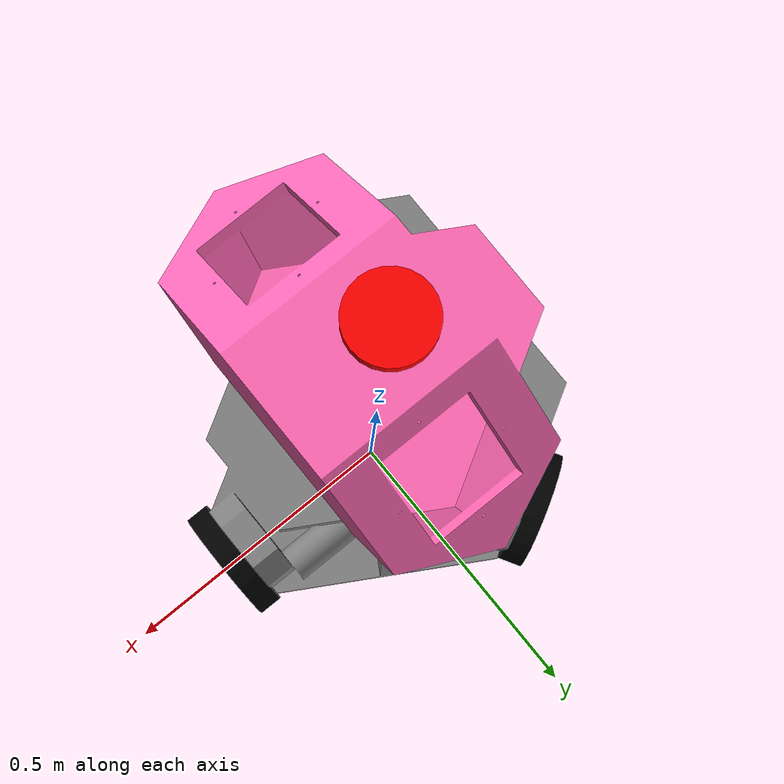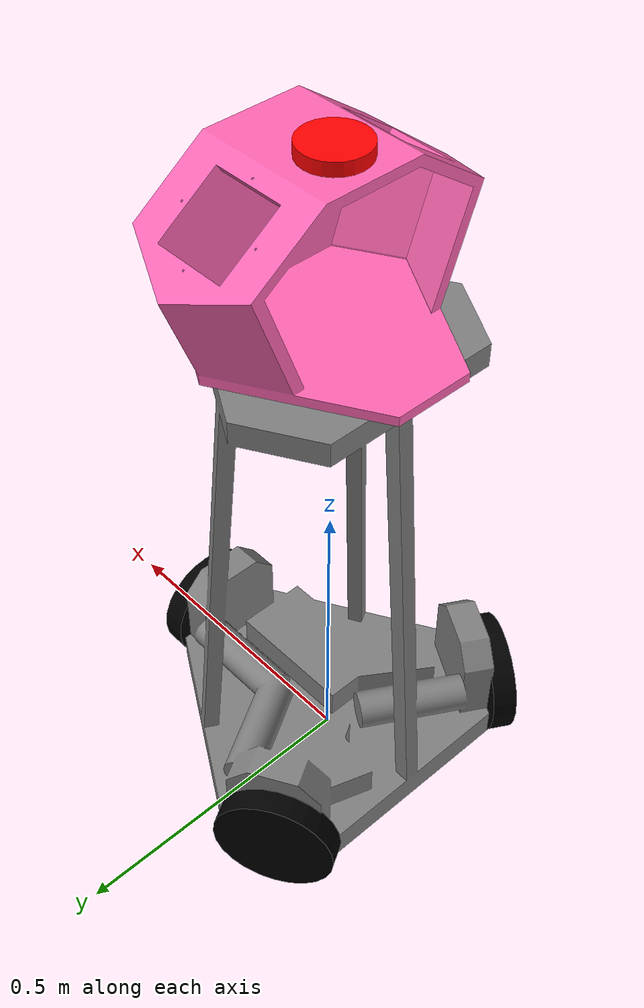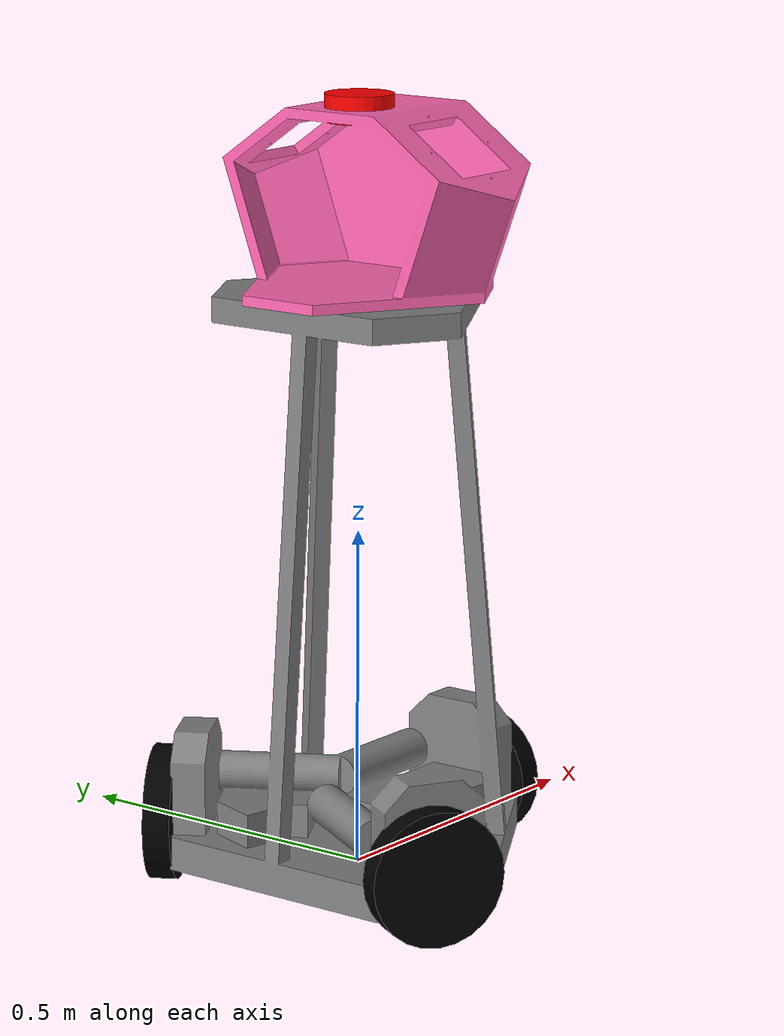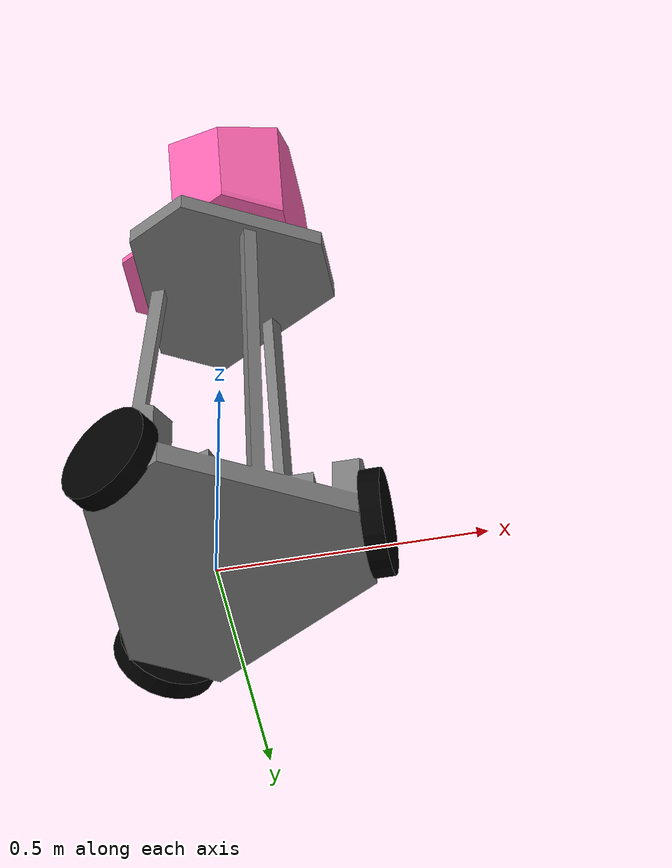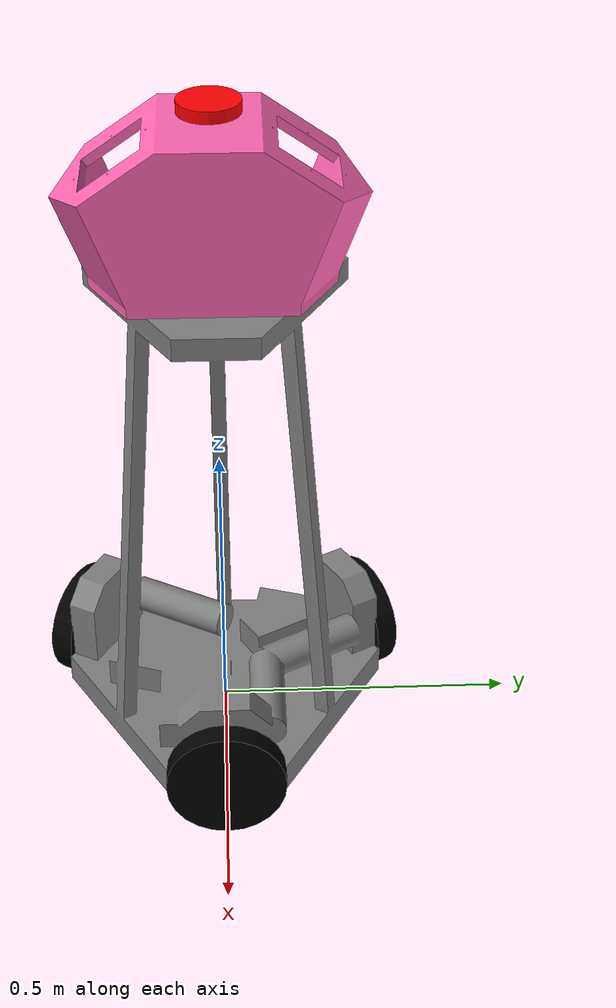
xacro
<?xml version ="1.0"?>
<robot name="my_robot" xmlns:xacro="http://www.ros.org/wiki/xacro">
    <xacro:property name = "wheel_radius" value = "0.1"/>
    <xacro:property name = "wheel_length" value = "0.04"/>
    <xacro:property name = "wheel_height" value = "0.064"/>

    <xacro:include filename="common_properties.xacro"/>

    <link name="base_footprint"/>

    <link name="base_robot">
        <visual>
            <origin xyz="0 0 0" rpy = "0 0 ${pi/2}"/>
            <geometry>
                <mesh filename="package://my_robot_description/meshes/robot_base.stl" scale="0.001 0.001 0.001"/>
            </geometry>
            <material name="grey"/>
        </visual>
    </link>

    <joint name="base_to_footprint" type="fixed">
        <parent link="base_footprint"/>
        <child link="base_robot"/>
        <origin xyz="0 0 0" rpy="0 0 0"/>
    </joint>

    <link name="upper_body">
        <visual>
            <origin xyz="0 0 0" rpy ="0 0 0.5216"/>
            <geometry>
                <mesh filename="package://my_robot_description/meshes/upper_body.stl" scale="0.001 0.001 0.001"/>
            </geometry>
            <material name="pink"/>
        </visual>
    </link>

    <joint name="upper_body_to_base_joint" type="revolute">
        <parent link="base_robot"/>
        <child link="upper_body"/>
        <origin xyz="0 0 0.85" rpy="0 0 0"/>
        <axis xyz="0 0 1"/>
        <limit lower="${-3*pi/8}" upper="${3*pi/8}" effort="100" velocity="1"/>
    </joint>

    <xacro:macro name="wheel_link" params="prefix rpy">
        <link name="${prefix}_wheel_link">
            <visual>
                <geometry>
                    <cylinder radius="${wheel_radius}" length="${wheel_length}"/>
                </geometry>
                <origin xyz="0 0 0" rpy="${rpy}"/>
                <material name="black"/>
            </visual>
        </link>
    </xacro:macro>
    <xacro:wheel_link prefix="front" rpy="${pi / 2.0} 0 ${pi / 2.0}"/>
    <xacro:wheel_link prefix="left" rpy="${pi / 2.0} 0 ${pi / 6.0}"/>
    <xacro:wheel_link prefix="right" rpy="${pi / 2.0} 0 ${-pi / 6.0}"/>

    <xacro:macro name="wheel_joint" params="prefix origin_x origin_y axis">
        <joint name="base_${prefix}_wheel_joint" type="continuous">
            <parent link="base_robot"/>
            <child link="${prefix}_wheel_link"/>
            <axis xyz="${axis}"/>
            <origin xyz="${origin_x} ${origin_y} ${wheel_height}" rpy="0 0 0"/>
        </joint>
    </xacro:macro>
    <xacro:wheel_joint prefix="front" origin_x="${wheel_length/2.0+0.279}"
                       origin_y="0" axis="1 0 0"/>
    <xacro:wheel_joint prefix="left" origin_x="${-0.127-(wheel_length/2.0)*sin(pi/3)}"
                       origin_y="${0.235+(wheel_length/2.0)*cos(pi/3)}"
                       axis="${-sin(pi/6)} ${cos(pi/6)} 0"/>
    <xacro:wheel_joint prefix="right" origin_x="${-0.127-(wheel_length/2.0)*sin(pi/3)}"
                       origin_y="${-0.235-(wheel_length/2.0)*cos(pi/3)}"
                       axis="${sin(pi/6)} ${cos(pi/6)} 0"/>

    <link name="lidar">
        <visual>
            <geometry>
                <cylinder radius="0.05" length="0.04"/>
            </geometry>
            <material name="red"/>
        </visual>
    </link>
    <joint name="lidar_to_upper_body_joint" type="fixed">
        <parent link="upper_body"/>
        <child link="lidar"/>
        <origin xyz="0 0 0.265" roy="0 0 0"/>
    </joint>
</robot>

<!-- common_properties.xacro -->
<robot xmlns:xacro="http://www.ros.org/wiki/xacro">

    <material name="green">
        <color rgba="0 0.5 0 1"/>
    </material>

    <material name="pink">
        <color rgba="1 0.4 0.7 1"/>
    </material>

    <material name="grey">
        <color rgba="0.5 0.5 0.5 1" />
    </material>

    <material name="black">
        <color rgba="0 0 0 1" />
    </material>

    <material name="red">
        <color rgba="1 0 0 1" />
    </material>

</robot>
